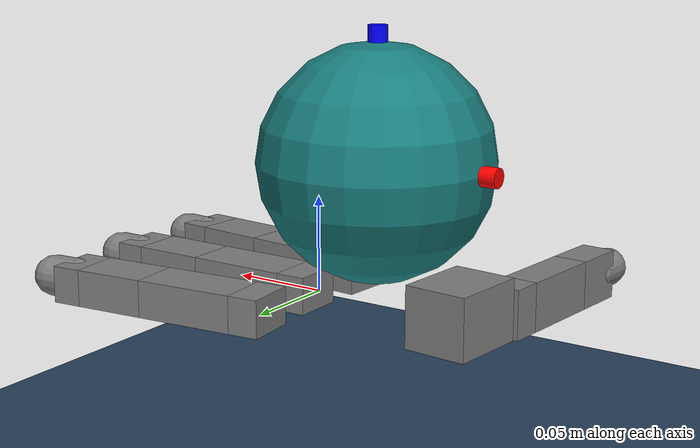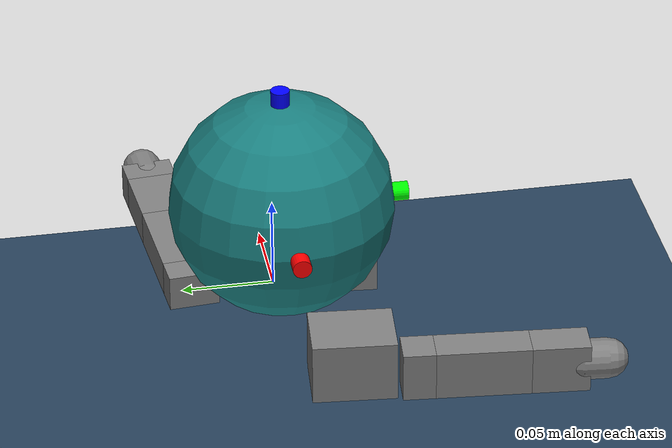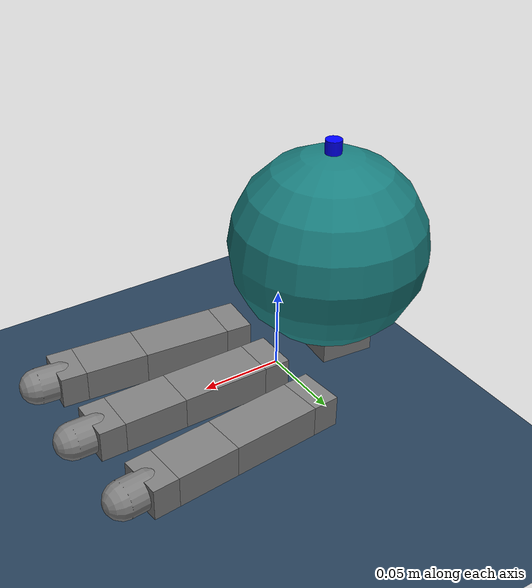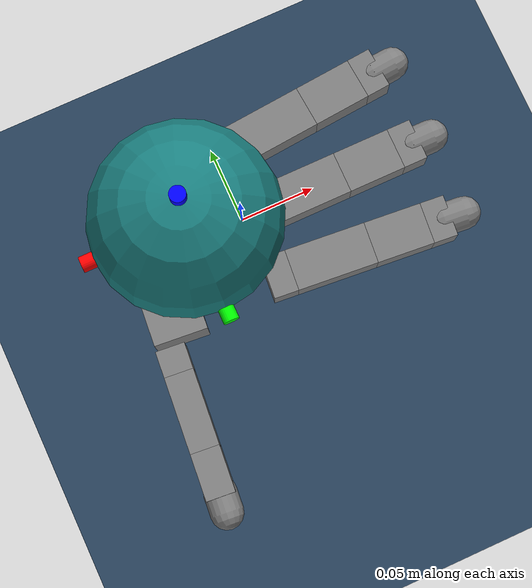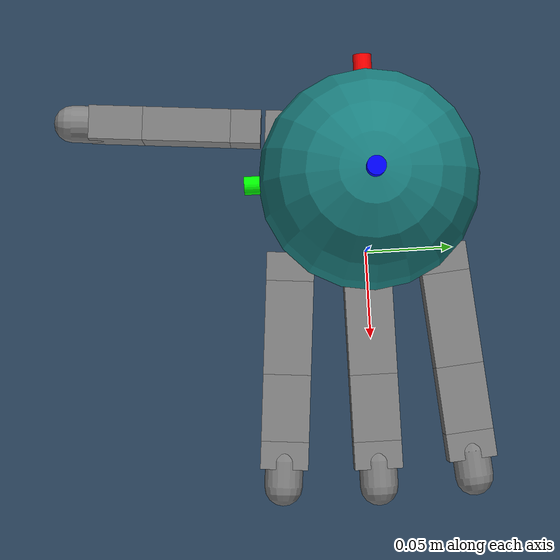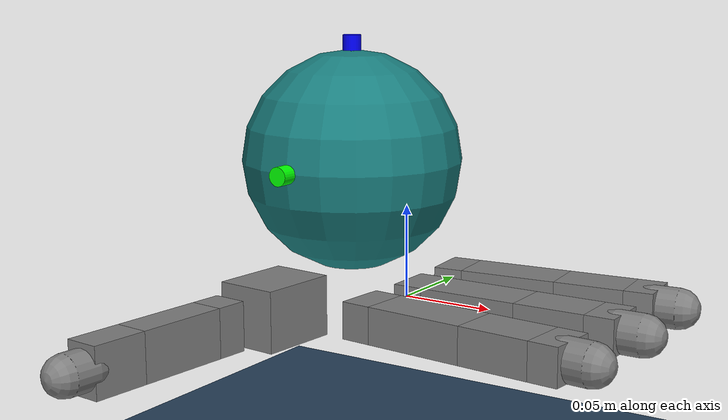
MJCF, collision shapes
<!--
    This MJCF scene is used for MJPC
    allegro_aligned_mujoco_full_collision.xml (with full collision geometry) is used
 -->

<mujoco model="my_scene">
    <!-- Include the Leap Hand model -->
    <include file="./allegro_aligned_mujoco_full_collision.xml"/>

    <statistic center="0 0 0.1" extent=".3"/>

    <!-- Define the world body -->
    <worldbody>
        <!-- Define the manipulated object, e.g., a ball -->
        <body name="object" pos="-0.035 0.0 0.072" euler="0 0 3.1415927" >
            <inertial pos="0 0 0" mass="0.1" diaginertia="0.000144 0.000144 0.000144" />
            <geom name="object_geom" type="sphere" size="0.06" rgba="0.1 0.5 0.5 0.8" condim="6" priority="1" friction="2.0 0.002 0.002" />
            <geom type="cylinder" pos="0.0 0.0 0.0325" size="0.005 0.035" rgba="0.0 0.0 1.0 1.0" class="visual" />
            <geom type="cylinder" pos="0.0 0.0325 0.0" euler="1.5708 0.0 0.0" size="0.005 0.035" rgba="0.0 1.0 0.0 1.0" class="visual" />
            <geom type="cylinder" pos="0.0325 0.0 0.0" euler="0.0 1.5708 0.0" size="0.005 0.035" rgba="1.0 0.0 0.0 1.0" class="visual" />
            <joint type="ball" axis="0 0 1" damping="0.4" />
        </body>
    </worldbody>

    <!-- Define actuators, sensors, or additional elements here -->
</mujoco>

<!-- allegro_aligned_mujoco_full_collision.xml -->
<mujoco model="allegro_right">
  <compiler angle="radian" meshdir="../assets/allegro" autolimits="true"/>

  <option cone="elliptic" impratio="10"/>

  <default>
    <default class="allegro_right">
      <joint axis="0 1 0" damping=".1"/>
      <position kp="1"/>
      <geom density="800"/>

      <default class="visual">
        <geom type="mesh" contype="0" conaffinity="0" group="2" material="black"/>
        <default class="palm_visual">
          <geom mesh="base_link"/>
        </default>
        <default class="base_visual">
          <geom mesh="link_0.0"/>
        </default>
        <default class="proximal_visual">
          <geom mesh="link_1.0"/>
        </default>
        <default class="medial_visual">
          <geom mesh="link_2.0"/>
        </default>
        <default class="distal_visual">
          <geom mesh="link_3.0"/>
        </default>
        <default class="fingertip_visual">
          <geom pos="0 0 0.0267" material="white" mesh="link_3.0_tip"/>
        </default>
        <default class="thumbtip_visual">
          <geom pos="0 0 0.0423" material="white" mesh="link_15.0_tip"/>
        </default>
      </default>

      <default class="collision">
        <geom group="3" type="box" mass="0"/>
        <default class="palm_collision">
          <geom size="0.0204 0.0565 0.0475" pos="-0.0093 0 -0.0475"/>
        </default>
        <default class="base_collision">
          <geom size="0.0098 0.01375 0.0082" pos="0 0 0.0082"/>
          <default class="thumb_base_collision">
            <geom size="0.0179 0.017 0.02275" pos="-0.0179 0.009 0.0145"/>
          </default>
        </default>
        <default class="proximal_collision">
          <geom size="0.0098 0.01375 0.027" pos="0 0 0.027"/>
          <default class="thumb_proximal_collision">
            <geom size="0.0098 0.01375 0.00885" pos="0 0 0.00885"/>
          </default>
        </default>
        <default class="medial_collision">
          <geom size="0.0098 0.01375 0.0192" pos="0 0 0.0192"/>
          <default class="thumb_medial_collision">
            <geom size="0.0098 0.01375 0.0257" pos="0 0 0.0257"/>
          </default>
        </default>
        <default class="distal_collision">
          <geom size="0.0098 0.01375 0.008" pos="0 0 0.008"/>
          <default class="thumb_distal_collision">
            <geom size="0.0098 0.01375 0.0157" pos="0 0 0.0157"/>
          </default>
        </default>
        <default class="fingertip_collision">
          <geom type="capsule" size="0.011 0.0075" pos="0 0 0.019" margin="0.0" gap="0.0" />
          <default class="thumbtip_collision">
            <geom type="capsule" size="0.011 0.007" pos="0 0 0.035" margin="0.0" gap="0.0" />
          </default>
        </default>
      </default>

      <default class="base">
        <joint axis="0 0 1" range="-0.47 0.47"/>
        <position ctrlrange="-0.47 0.47"/>
      </default>
      <default class="proximal">
        <joint range="-0.196 1.61"/>
        <position ctrlrange="-0.196 1.61"/>
      </default>
      <default class="medial">
        <joint range="-0.174 1.709"/>
        <position ctrlrange="-0.174 1.709"/>
      </default>
      <default class="distal">
        <joint range="-0.227 1.618"/>
        <position ctrlrange="-0.227 1.618"/>
      </default>
      <default class="thumb_base">
        <joint axis="-1 0 0" range="0.263 1.396"/>
        <position ctrlrange="0.263 1.396"/>
      </default>
      <default class="thumb_proximal">
        <joint axis="0 0 1" range="-0.105 2.5"/>
        <position ctrlrange="-0.105 2.5"/>
      </default>
      <default class="thumb_medial">
        <joint range="-0.189 1.644"/>
        <position ctrlrange="-0.189 1.644"/>
      </default>
      <default class="thumb_distal">
        <joint range="-0.162 1.719"/>
        <position ctrlrange="-0.162 1.719"/>
      </default>
    </default>
  </default>

  <visual>
    <headlight diffuse="0.6 0.6 0.6" ambient="0.3 0.3 0.3" specular="0 0 0" />
    <rgba haze="0.15 0.25 0.35 1" />
    <global azimuth="-120" elevation="-20" />
  </visual>

  <asset>
    <material name="black" rgba="0.2 0.2 0.2 1"/>
    <material name="white" rgba="0.9 0.9 0.9 1"/>
    <texture type="2d" name="groundplane" builtin="checker" mark="edge" rgb1="0.2 0.3 0.4" rgb2="0.1 0.2 0.3"
            markrgb="0.8 0.8 0.8" width="300" height="300" />
    <material name="groundplane" texture="groundplane" texuniform="true" texrepeat="5 5" reflectance="0.2" />

    <mesh file="base_link.stl"/>
    <mesh file="link_0.0.stl"/>
    <mesh file="link_1.0.stl"/>
    <mesh file="link_2.0.stl"/>
    <mesh file="link_3.0.stl"/>
    <mesh file="link_3.0_tip.stl"/>
    <mesh file="link_12.0_right.stl"/>
    <mesh file="link_13.0.stl"/>
    <mesh file="link_14.0.stl"/>
    <mesh file="link_15.0.stl"/>
    <mesh file="link_15.0_tip.stl"/>
  </asset>

  <worldbody>
    <light directional="true" diffuse="0.4 0.4 0.4" specular="0.1 0.1 0.1" pos="0 0 5.0" dir="0 0 -1" castshadow="false" />
    <light directional="true" diffuse="0.6 0.6 0.6" specular="0.2 0.2 0.2" pos="0 0 4" dir="0 0 -1" />
    <geom name="floor" pos="0 0 -0.1" size="0 0 0.05" type="plane" material="groundplane"/>
    <camera name="fixed" pos="0 -3.0 0.5226776" xyaxes="1 0 0 0 0 1" />
    <camera name="track" mode="trackcom" pos="0 -3.0 0.5226776" xyaxes="1 0 0 0 0 1" />
    <body name="palm" quat="0 1 0 1" childclass="allegro_right">
      <geom class="palm_visual" mesh="base_link"/>
      <!-- First finger -->
      <body name="ff_base" pos="0 0.0435 -0.001542" quat="0.999048 -0.0436194 0 0">
        <joint name="joint_0" class="base"/>
        <geom class="base_visual"/>
        <geom class="base_collision"/>
        <body name="ff_proximal" pos="0 0 0.0164">
          <joint name="joint_1" class="proximal"/>
          <geom class="proximal_visual"/>
          <geom class="proximal_collision"/>
          <body name="ff_medial" pos="0 0 0.054">
            <joint name="joint_2" class="medial"/>
            <geom class="medial_visual"/>
            <geom class="medial_collision"/>
            <body name="ff_distal" pos="0 0 0.0384">
              <joint name="joint_3" class="distal"/>
              <geom class="distal_visual"/>
              <geom class="distal_collision"/>
              <body name="ff_tip">
                <geom class="fingertip_visual"/>
                <geom name="allegro_hand_right::fingertip_collision" class="fingertip_collision"/>
                <site name="allegro_hand_right::fingertip_collision" />
              </body>
            </body>
          </body>
        </body>
      </body>
      <!-- Middle finger -->
      <body name="mf_base" pos="0 0 0.0007">
        <joint name="joint_4" class="base"/>
        <geom class="base_visual"/>
        <geom class="base_collision"/>
        <body name="mf_proximal" pos="0 0 0.0164">
          <joint name="joint_5" class="proximal"/>
          <geom class="proximal_visual"/>
          <geom class="proximal_collision"/>
          <body name="mf_medial" pos="0 0 0.054">
            <joint name="joint_6" class="medial"/>
            <geom class="medial_visual"/>
            <geom class="medial_collision"/>
            <body name="mf_distal" pos="0 0 0.0384">
              <joint name="joint_7" class="distal"/>
              <geom class="distal_visual"/>
              <geom class="distal_collision"/>
              <body name="mf_tip">
                <geom class="fingertip_visual"/>
                <geom name="allegro_hand_right::fingertip_2_collision" class="fingertip_collision"/>
                <site name="allegro_hand_right::fingertip_2_collision" />
              </body>
            </body>
          </body>
        </body>
      </body>
      <!-- Ring finger -->
      <body name="rf_base" pos="0 -0.0435 -0.001542" quat="0.999048 0.0436194 0 0">
        <joint name="joint_8" class="base"/>
        <geom class="base_visual"/>
        <geom class="base_collision"/>
        <body name="rf_proximal" pos="0 0 0.0164">
          <joint name="joint_9" class="proximal"/>
          <geom class="proximal_visual"/>
          <geom class="proximal_collision"/>
          <body name="rf_medial" pos="0 0 0.054">
            <joint name="joint_10" class="medial"/>
            <geom class="medial_visual"/>
            <geom class="medial_collision"/>
            <body name="rf_distal" pos="0 0 0.0384">
              <joint name="joint_11" class="distal"/>
              <geom class="distal_visual"/>
              <geom class="distal_collision"/>
              <body name="rf_tip">
                <geom class="fingertip_visual"/>
                <geom name="allegro_hand_right::fingertip_3_collision" class="fingertip_collision"/>
                <site name="allegro_hand_right::fingertip_3_collision" />
              </body>
            </body>
          </body>
        </body>
      </body>
      <body name="th_base" pos="-0.0182 0.019333 -0.045987" quat="0.477714 -0.521334 -0.521334 -0.477714">
        <joint name="joint_12" class="thumb_base"/>
        <geom class="visual" mesh="link_12.0_right"/>
        <geom class="thumb_base_collision"/>
        <body name="th_proximal" pos="-0.027 0.005 0.0399">
          <joint name="joint_13" class="thumb_proximal"/>
          <geom class="visual" mesh="link_13.0"/>
          <geom class="thumb_proximal_collision"/>
          <body name="th_medial" pos="0 0 0.0177">
            <joint name="joint_14" class="thumb_medial"/>
            <geom class="visual" mesh="link_14.0"/>
            <geom class="thumb_medial_collision"/>
            <body name="th_distal" pos="0 0 0.0514">
              <joint name="joint_15" class="thumb_distal"/>
              <geom class="visual" mesh="link_15.0"/>
              <geom class="thumb_distal_collision"/>
              <body name="th_tip">
                <geom class="thumbtip_visual"/>
                <geom name="allegro_hand_right::thumb_fingertip_collision" class="thumbtip_collision"/>
                <site name="allegro_hand_right::thumb_fingertip_collision" />
              </body>
            </body>
          </body>
        </body>
      </body>
    <site name="fake_world" pos="0 0 0" euler="0 1.5708 0" size="0.001" rgba="1 0 0 1" type="sphere"/>
    </body>
  </worldbody>

  <contact>
    <!-- exclude palm-finger contacts -->
    <exclude body1="palm" body2="ff_base"/>
    <exclude body1="palm" body2="mf_base"/>
    <exclude body1="palm" body2="rf_base"/>
    <exclude body1="palm" body2="th_base"/>
    <exclude body1="palm" body2="th_proximal"/>
    <!-- exclude finger-finger contacts -->
    <exclude body1="ff_tip" body2="mf_tip" />
    <exclude body1="ff_tip" body2="rf_tip" />
    <exclude body1="ff_tip" body2="th_tip" />
    <exclude body1="mf_tip" body2="rf_tip" />
    <exclude body1="mf_tip" body2="th_tip" />
    <exclude body1="rf_tip" body2="th_tip" />
  </contact>

  <actuator>
    <position name="ffa0" joint="joint_0" class="base"/>
    <position name="ffa1" joint="joint_1" class="proximal"/>
    <position name="ffa2" joint="joint_2" class="medial"/>
    <position name="ffa3" joint="joint_3" class="distal"/>
    <position name="mfa0" joint="joint_4" class="base"/>
    <position name="mfa1" joint="joint_5" class="proximal"/>
    <position name="mfa2" joint="joint_6" class="medial"/>
    <position name="mfa3" joint="joint_7" class="distal"/>
    <position name="rfa0" joint="joint_8" class="base"/>
    <position name="rfa1" joint="joint_9" class="proximal"/>
    <position name="rfa2" joint="joint_10" class="medial"/>
    <position name="rfa3" joint="joint_11" class="distal"/>
    <position name="tha0" joint="joint_12" class="thumb_base"/>
    <position name="tha1" joint="joint_13" class="thumb_proximal"/>
    <position name="tha2" joint="joint_14" class="thumb_medial"/>
    <position name="tha3" joint="joint_15" class="thumb_distal"/>
  </actuator>
</mujoco>
